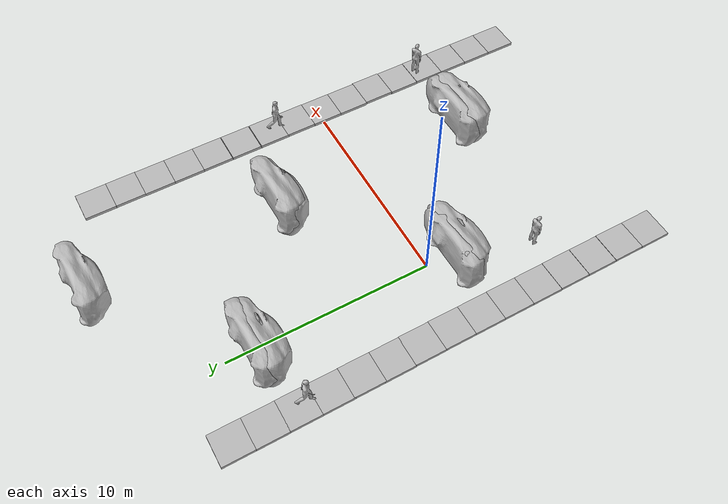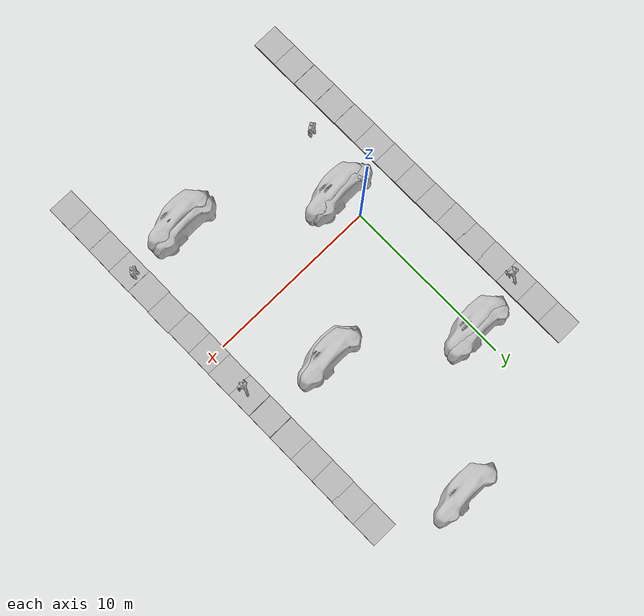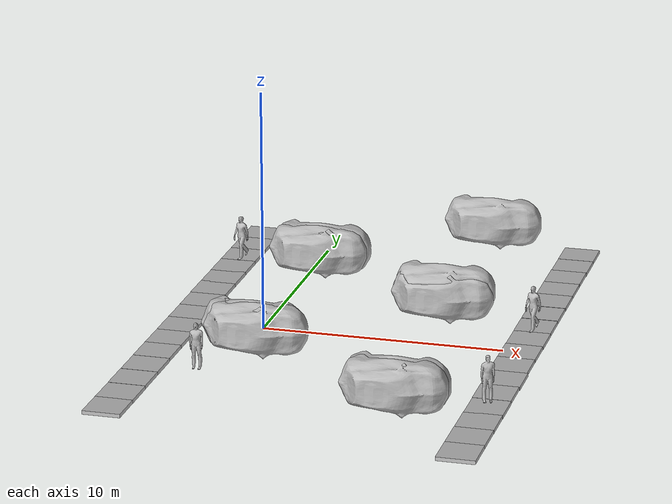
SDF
<sdf version="1.7">
 <world name="default">
  <light name="sun" type="directional">
   <pose>0 0 10 0 -0 0</pose>
   <diffuse>0.8 0.8 0.8 1</diffuse>
   <specular>0.2 0.2 0.2 1</specular>
   <attenuation>
    <range>1000</range>
    <constant>0.9</constant>
    <linear>0.01</linear>
    <quadratic>0.001</quadratic>
   </attenuation>
   <direction>-0.5 0.1 -0.9</direction>
   <spot><inner_angle>0</inner_angle><outer_angle>0</outer_angle><falloff>0</falloff></spot>
  </light>
  <gravity>0 0 -9.8</gravity>
  <magnetic_field>6e-06 2.3e-05 -4.2e-05</magnetic_field>
  <atmosphere type="adiabatic"/>
  <physics type="ode">
   <max_step_size>0.001</max_step_size>
   <real_time_factor>1</real_time_factor>
   <real_time_update_rate>1000</real_time_update_rate>
  </physics>
  <scene><ambient>0.4 0.4 0.4 1</ambient><background>0.7 0.7 0.7 1</background><shadows>1</shadows></scene>
  <audio><device>default</device></audio>
  <spherical_coordinates>
   <surface_model>EARTH_WGS84</surface_model>
   <latitude_deg>0</latitude_deg>
   <longitude_deg>0</longitude_deg>
   <elevation>0</elevation>
   <heading_deg>0</heading_deg>
  </spherical_coordinates>
  <model name="car">
   <static>1</static>
   <link name="link">
    <collision name="collision">
     <geometry><mesh><scale>2 2 2</scale><uri>model://car/meshes/car.obj</uri></mesh></geometry>
    </collision>
    <visual name="visual">
     <geometry><mesh><scale>2 2 2</scale><uri>model://car/meshes/car.obj</uri></mesh></geometry>
    </visual>
   </link>
   <pose>0.108995 -0.745607 0.66087 1.60298 -0 0</pose>
  </model>
  <model name="car_clone">
   <static>1</static>
   <link name="link">
    <collision name="collision">
     <geometry><mesh><scale>2 2 2</scale><uri>model://car/meshes/car.obj</uri></mesh></geometry>
    </collision>
    <visual name="visual">
     <geometry><mesh><scale>2 2 2</scale><uri>model://car/meshes/car.obj</uri></mesh></geometry>
    </visual>
   </link>
   <pose>7.1852 -5.65099 0.647097 1.60298 -0 0</pose>
  </model>
  <model name="car_clone_0">
   <static>1</static>
   <link name="link">
    <collision name="collision">
     <geometry><mesh><scale>2 2 2</scale><uri>model://car/meshes/car.obj</uri></mesh></geometry>
    </collision>
    <visual name="visual">
     <geometry><mesh><scale>2 2 2</scale><uri>model://car/meshes/car.obj</uri></mesh></geometry>
    </visual>
   </link>
   <pose>6.63545 5.07193 0.797903 1.58582 -0 0</pose>
  </model>
  <model name="car_clone_0_clone">
   <static>1</static>
   <link name="link">
    <collision name="collision">
     <geometry><mesh><scale>2 2 2</scale><uri>model://car/meshes/car.obj</uri></mesh></geometry>
    </collision>
    <visual name="visual">
     <geometry><mesh><scale>2 2 2</scale><uri>model://car/meshes/car.obj</uri></mesh></geometry>
    </visual>
   </link>
   <pose>0.201395 9.34131 0.65244 1.60298 -0 0</pose>
  </model>
  <model name="walkway_metal_straight">
   <static>1</static>
   <link name="link">
    <collision name="collision">
     <pose>0 0.762 0.076075 0 -0 0</pose>
     <geometry><box><size>1.524 1.524 0.15215</size></box></geometry>
    </collision>
    <visual name="visual">
     <geometry>
      <mesh><scale>0.001 0.001 0.001</scale><uri>model://walkway_metal_straight/meshes/mesh.obj</uri></mesh>
     </geometry>
    </visual>
   </link>
   <pose>10.7625 5.09804 0 0 -0 0</pose>
  </model>
  <model name="walkway_metal_straight_clone">
   <static>1</static>
   <link name="link">
    <collision name="collision">
     <pose>0 0.762 0.076075 0 -0 0</pose>
     <geometry><box><size>1.524 1.524 0.15215</size></box></geometry>
    </collision>
    <visual name="visual">
     <geometry>
      <mesh><scale>0.001 0.001 0.001</scale><uri>model://walkway_metal_straight/meshes/mesh.obj</uri></mesh>
     </geometry>
    </visual>
   </link>
   <pose>10.7568 3.54542 0 0 -0 0</pose>
  </model>
  <model name="walkway_metal_straight_clone_0">
   <static>1</static>
   <link name="link">
    <collision name="collision">
     <pose>0 0.762 0.076075 0 -0 0</pose>
     <geometry><box><size>1.524 1.524 0.15215</size></box></geometry>
    </collision>
    <visual name="visual">
     <geometry>
      <mesh><scale>0.001 0.001 0.001</scale><uri>model://walkway_metal_straight/meshes/mesh.obj</uri></mesh>
     </geometry>
    </visual>
   </link>
   <pose>10.757 1.98988 0 0 -0 0</pose>
  </model>
  <model name="walkway_metal_straight_clone_1">
   <static>1</static>
   <link name="link">
    <collision name="collision">
     <pose>0 0.762 0.076075 0 -0 0</pose>
     <geometry><box><size>1.524 1.524 0.15215</size></box></geometry>
    </collision>
    <visual name="visual">
     <geometry>
      <mesh><scale>0.001 0.001 0.001</scale><uri>model://walkway_metal_straight/meshes/mesh.obj</uri></mesh>
     </geometry>
    </visual>
   </link>
   <pose>10.7643 0.507661 0 0 -0 0</pose>
  </model>
  <model name="walkway_metal_straight_clone_1_clone">
   <static>1</static>
   <link name="link">
    <collision name="collision">
     <pose>0 0.762 0.076075 0 -0 0</pose>
     <geometry><box><size>1.524 1.524 0.15215</size></box></geometry>
    </collision>
    <visual name="visual">
     <geometry>
      <mesh><scale>0.001 0.001 0.001</scale><uri>model://walkway_metal_straight/meshes/mesh.obj</uri></mesh>
     </geometry>
    </visual>
   </link>
   <pose>10.7497 -1.00004 0 0 -0 0</pose>
  </model>
  <model name="walkway_metal_straight_clone_1_clone_0">
   <static>1</static>
   <link name="link">
    <collision name="collision">
     <pose>0 0.762 0.076075 0 -0 0</pose>
     <geometry><box><size>1.524 1.524 0.15215</size></box></geometry>
    </collision>
    <visual name="visual">
     <geometry>
      <mesh><scale>0.001 0.001 0.001</scale><uri>model://walkway_metal_straight/meshes/mesh.obj</uri></mesh>
     </geometry>
    </visual>
   </link>
   <pose>10.7435 -2.51706 0 0 -0 0</pose>
  </model>
  <model name="walkway_metal_straight_clone_1_clone_1">
   <static>1</static>
   <link name="link">
    <collision name="collision">
     <pose>0 0.762 0.076075 0 -0 0</pose>
     <geometry><box><size>1.524 1.524 0.15215</size></box></geometry>
    </collision>
    <visual name="visual">
     <geometry>
      <mesh><scale>0.001 0.001 0.001</scale><uri>model://walkway_metal_straight/meshes/mesh.obj</uri></mesh>
     </geometry>
    </visual>
   </link>
   <pose>10.7838 -4.03653 0 0 -0 0</pose>
  </model>
  <model name="walkway_metal_straight_clone_1_clone_2">
   <static>1</static>
   <link name="link">
    <collision name="collision">
     <pose>0 0.762 0.076075 0 -0 0</pose>
     <geometry><box><size>1.524 1.524 0.15215</size></box></geometry>
    </collision>
    <visual name="visual">
     <geometry>
      <mesh><scale>0.001 0.001 0.001</scale><uri>model://walkway_metal_straight/meshes/mesh.obj</uri></mesh>
     </geometry>
    </visual>
   </link>
   <pose>10.7551 -5.55481 0 0 -0 0</pose>
  </model>
  <model name="walkway_metal_straight_clone_1_clone_3">
   <static>1</static>
   <link name="link">
    <collision name="collision">
     <pose>0 0.762 0.076075 0 -0 0</pose>
     <geometry><box><size>1.524 1.524 0.15215</size></box></geometry>
    </collision>
    <visual name="visual">
     <geometry>
      <mesh><scale>0.001 0.001 0.001</scale><uri>model://walkway_metal_straight/meshes/mesh.obj</uri></mesh>
     </geometry>
    </visual>
   </link>
   <pose>10.769 -7.08597 0 0 -0 0</pose>
  </model>
  <model name="walkway_metal_straight_clone_1_clone_4">
   <static>1</static>
   <link name="link">
    <collision name="collision">
     <pose>0 0.762 0.076075 0 -0 0</pose>
     <geometry><box><size>1.524 1.524 0.15215</size></box></geometry>
    </collision>
    <visual name="visual">
     <geometry>
      <mesh><scale>0.001 0.001 0.001</scale><uri>model://walkway_metal_straight/meshes/mesh.obj</uri></mesh>
     </geometry>
    </visual>
   </link>
   <pose>10.7569 -8.56796 0 0 -0 0</pose>
  </model>
  <model name="walkway_metal_straight_clone_1_clone_5">
   <static>1</static>
   <link name="link">
    <collision name="collision">
     <pose>0 0.762 0.076075 0 -0 0</pose>
     <geometry><box><size>1.524 1.524 0.15215</size></box></geometry>
    </collision>
    <visual name="visual">
     <geometry>
      <mesh><scale>0.001 0.001 0.001</scale><uri>model://walkway_metal_straight/meshes/mesh.obj</uri></mesh>
     </geometry>
    </visual>
   </link>
   <pose>10.7494 -10.0935 0 0 -0 0</pose>
  </model>
  <model name="walkway_metal_straight_clone_1_clone_6">
   <static>1</static>
   <link name="link">
    <collision name="collision">
     <pose>0 0.762 0.076075 0 -0 0</pose>
     <geometry><box><size>1.524 1.524 0.15215</size></box></geometry>
    </collision>
    <visual name="visual">
     <geometry>
      <mesh><scale>0.001 0.001 0.001</scale><uri>model://walkway_metal_straight/meshes/mesh.obj</uri></mesh>
     </geometry>
    </visual>
   </link>
   <pose>10.7466 -11.6175 0 0 -0 0</pose>
  </model>
  <light name="user_spot_light_2" type="spot">
   <pose>0.146558 -7.64628 1 0 -0 0</pose>
   <diffuse>0.5 0.5 0.5 1</diffuse>
   <specular>0.1 0.1 0.1 1</specular>
   <direction>0 0 -1</direction>
   <attenuation>
    <range>20</range>
    <constant>0.5</constant>
    <linear>0.01</linear>
    <quadratic>0.001</quadratic>
   </attenuation>
   <cast_shadows>0</cast_shadows>
   <spot><inner_angle>0.6</inner_angle><outer_angle>1</outer_angle><falloff>1</falloff></spot>
  </light>
  <model name="walkway_metal_straight_clone_2">
   <static>1</static>
   <link name="link">
    <collision name="collision">
     <pose>0 0.762 0.076075 0 -0 0</pose>
     <geometry><box><size>1.524 1.524 0.15215</size></box></geometry>
    </collision>
    <visual name="visual">
     <geometry>
      <mesh><scale>0.001 0.001 0.001</scale><uri>model://walkway_metal_straight/meshes/mesh.obj</uri></mesh>
     </geometry>
    </visual>
   </link>
   <pose>10.7601 6.61868 0 0 -0 0</pose>
  </model>
  <model name="walkway_metal_straight_clone_3">
   <static>1</static>
   <link name="link">
    <collision name="collision">
     <pose>0 0.762 0.076075 0 -0 0</pose>
     <geometry><box><size>1.524 1.524 0.15215</size></box></geometry>
    </collision>
    <visual name="visual">
     <geometry>
      <mesh><scale>0.001 0.001 0.001</scale><uri>model://walkway_metal_straight/meshes/mesh.obj</uri></mesh>
     </geometry>
    </visual>
   </link>
   <pose>10.7611 8.13541 0 0 -0 0</pose>
  </model>
  <model name="walkway_metal_straight_clone_3_clone">
   <static>1</static>
   <link name="link">
    <collision name="collision">
     <pose>0 0.762 0.076075 0 -0 0</pose>
     <geometry><box><size>1.524 1.524 0.15215</size></box></geometry>
    </collision>
    <visual name="visual">
     <geometry>
      <mesh><scale>0.001 0.001 0.001</scale><uri>model://walkway_metal_straight/meshes/mesh.obj</uri></mesh>
     </geometry>
    </visual>
   </link>
   <pose>10.7771 9.61259 0 0 -0 0</pose>
  </model>
  <model name="walkway_metal_straight_clone_3_clone_0">
   <static>1</static>
   <link name="link">
    <collision name="collision">
     <pose>0 0.762 0.076075 0 -0 0</pose>
     <geometry><box><size>1.524 1.524 0.15215</size></box></geometry>
    </collision>
    <visual name="visual">
     <geometry>
      <mesh><scale>0.001 0.001 0.001</scale><uri>model://walkway_metal_straight/meshes/mesh.obj</uri></mesh>
     </geometry>
    </visual>
   </link>
   <pose>10.7719 11.1421 0 0 -0 0</pose>
  </model>
  <model name="walkway_metal_straight_clone_3_clone_0_clone">
   <static>1</static>
   <link name="link">
    <collision name="collision">
     <pose>0 0.762 0.076075 0 -0 0</pose>
     <geometry><box><size>1.524 1.524 0.15215</size></box></geometry>
    </collision>
    <visual name="visual">
     <geometry>
      <mesh><scale>0.001 0.001 0.001</scale><uri>model://walkway_metal_straight/meshes/mesh.obj</uri></mesh>
     </geometry>
    </visual>
   </link>
   <pose>-3.34955 10.4785 0 0 -0 0</pose>
  </model>
  <model name="walkway_metal_straight_clone_3_clone_0_clone_clone">
   <static>1</static>
   <link name="link">
    <collision name="collision">
     <pose>0 0.762 0.076075 0 -0 0</pose>
     <geometry><box><size>1.524 1.524 0.15215</size></box></geometry>
    </collision>
    <visual name="visual">
     <geometry>
      <mesh><scale>0.001 0.001 0.001</scale><uri>model://walkway_metal_straight/meshes/mesh.obj</uri></mesh>
     </geometry>
    </visual>
   </link>
   <pose>-3.35481 8.95698 0 0 -0 0</pose>
  </model>
  <model name="walkway_metal_straight_clone_3_clone_0_clone_clone_0">
   <static>1</static>
   <link name="link">
    <collision name="collision">
     <pose>0 0.762 0.076075 0 -0 0</pose>
     <geometry><box><size>1.524 1.524 0.15215</size></box></geometry>
    </collision>
    <visual name="visual">
     <geometry>
      <mesh><scale>0.001 0.001 0.001</scale><uri>model://walkway_metal_straight/meshes/mesh.obj</uri></mesh>
     </geometry>
    </visual>
   </link>
   <pose>-3.34729 7.45777 0 0 -0 0</pose>
  </model>
  <model name="walkway_metal_straight_clone_3_clone_0_clone_clone_1">
   <static>1</static>
   <link name="link">
    <collision name="collision">
     <pose>0 0.762 0.076075 0 -0 0</pose>
     <geometry><box><size>1.524 1.524 0.15215</size></box></geometry>
    </collision>
    <visual name="visual">
     <geometry>
      <mesh><scale>0.001 0.001 0.001</scale><uri>model://walkway_metal_straight/meshes/mesh.obj</uri></mesh>
     </geometry>
    </visual>
   </link>
   <pose>-3.34426 5.95164 0 0 -0 0</pose>
  </model>
  <model name="walkway_metal_straight_clone_3_clone_0_clone_clone_2">
   <static>1</static>
   <link name="link">
    <collision name="collision">
     <pose>0 0.762 0.076075 0 -0 0</pose>
     <geometry><box><size>1.524 1.524 0.15215</size></box></geometry>
    </collision>
    <visual name="visual">
     <geometry>
      <mesh><scale>0.001 0.001 0.001</scale><uri>model://walkway_metal_straight/meshes/mesh.obj</uri></mesh>
     </geometry>
    </visual>
   </link>
   <pose>-3.33639 4.49253 0 0 -0 0</pose>
  </model>
  <model name="walkway_metal_straight_clone_3_clone_0_clone_clone_3">
   <static>1</static>
   <link name="link">
    <collision name="collision">
     <pose>0 0.762 0.076075 0 -0 0</pose>
     <geometry><box><size>1.524 1.524 0.15215</size></box></geometry>
    </collision>
    <visual name="visual">
     <geometry>
      <mesh><scale>0.001 0.001 0.001</scale><uri>model://walkway_metal_straight/meshes/mesh.obj</uri></mesh>
     </geometry>
    </visual>
   </link>
   <pose>-3.33677 3.03003 0 0 -0 0</pose>
  </model>
  <model name="walkway_metal_straight_clone_3_clone_0_clone_clone_4">
   <static>1</static>
   <link name="link">
    <collision name="collision">
     <pose>0 0.762 0.076075 0 -0 0</pose>
     <geometry><box><size>1.524 1.524 0.15215</size></box></geometry>
    </collision>
    <visual name="visual">
     <geometry>
      <mesh><scale>0.001 0.001 0.001</scale><uri>model://walkway_metal_straight/meshes/mesh.obj</uri></mesh>
     </geometry>
    </visual>
   </link>
   <pose>-3.31864 1.52703 0 0 -0 0</pose>
  </model>
  <model name="walkway_metal_straight_clone_3_clone_0_clone_clone_5">
   <static>1</static>
   <link name="link">
    <collision name="collision">
     <pose>0 0.762 0.076075 0 -0 0</pose>
     <geometry><box><size>1.524 1.524 0.15215</size></box></geometry>
    </collision>
    <visual name="visual">
     <geometry>
      <mesh><scale>0.001 0.001 0.001</scale><uri>model://walkway_metal_straight/meshes/mesh.obj</uri></mesh>
     </geometry>
    </visual>
   </link>
   <pose>-3.30742 0.010922 0 0 -0 0</pose>
  </model>
  <model name="walkway_metal_straight_clone_3_clone_0_clone_clone_6">
   <static>1</static>
   <link name="link">
    <collision name="collision">
     <pose>0 0.762 0.076075 0 -0 0</pose>
     <geometry><box><size>1.524 1.524 0.15215</size></box></geometry>
    </collision>
    <visual name="visual">
     <geometry>
      <mesh><scale>0.001 0.001 0.001</scale><uri>model://walkway_metal_straight/meshes/mesh.obj</uri></mesh>
     </geometry>
    </visual>
   </link>
   <pose>-3.30873 -1.51157 0 0 -0 0</pose>
  </model>
  <model name="walkway_metal_straight_clone_3_clone_0_clone_clone_7">
   <static>1</static>
   <link name="link">
    <collision name="collision">
     <pose>0 0.762 0.076075 0 -0 0</pose>
     <geometry><box><size>1.524 1.524 0.15215</size></box></geometry>
    </collision>
    <visual name="visual">
     <geometry>
      <mesh><scale>0.001 0.001 0.001</scale><uri>model://walkway_metal_straight/meshes/mesh.obj</uri></mesh>
     </geometry>
    </visual>
   </link>
   <pose>-3.30414 -3.03559 0 0 -0 0</pose>
  </model>
  <model name="walkway_metal_straight_clone_3_clone_0_clone_clone_8">
   <static>1</static>
   <link name="link">
    <collision name="collision">
     <pose>0 0.762 0.076075 0 -0 0</pose>
     <geometry><box><size>1.524 1.524 0.15215</size></box></geometry>
    </collision>
    <visual name="visual">
     <geometry>
      <mesh><scale>0.001 0.001 0.001</scale><uri>model://walkway_metal_straight/meshes/mesh.obj</uri></mesh>
     </geometry>
    </visual>
   </link>
   <pose>-3.30448 -4.55523 0 0 -0 0</pose>
  </model>
  <model name="walkway_metal_straight_clone_3_clone_0_clone_clone_9">
   <static>1</static>
   <link name="link">
    <collision name="collision">
     <pose>0 0.762 0.076075 0 -0 0</pose>
     <geometry><box><size>1.524 1.524 0.15215</size></box></geometry>
    </collision>
    <visual name="visual">
     <geometry>
      <mesh><scale>0.001 0.001 0.001</scale><uri>model://walkway_metal_straight/meshes/mesh.obj</uri></mesh>
     </geometry>
    </visual>
   </link>
   <pose>-3.29251 -6.08455 0 0 -0 0</pose>
  </model>
  <model name="walkway_metal_straight_clone_3_clone_0_clone_clone_10">
   <static>1</static>
   <link name="link">
    <collision name="collision">
     <pose>0 0.762 0.076075 0 -0 0</pose>
     <geometry><box><size>1.524 1.524 0.15215</size></box></geometry>
    </collision>
    <visual name="visual">
     <geometry>
      <mesh><scale>0.001 0.001 0.001</scale><uri>model://walkway_metal_straight/meshes/mesh.obj</uri></mesh>
     </geometry>
    </visual>
   </link>
   <pose>-3.29313 -7.61698 0 0 -0 0</pose>
  </model>
  <model name="walkway_metal_straight_clone_3_clone_0_clone_clone_11">
   <static>1</static>
   <link name="link">
    <collision name="collision">
     <pose>0 0.762 0.076075 0 -0 0</pose>
     <geometry><box><size>1.524 1.524 0.15215</size></box></geometry>
    </collision>
    <visual name="visual">
     <geometry>
      <mesh><scale>0.001 0.001 0.001</scale><uri>model://walkway_metal_straight/meshes/mesh.obj</uri></mesh>
     </geometry>
    </visual>
   </link>
   <pose>-3.28217 -9.15153 0 0 -0 0</pose>
  </model>
  <model name="walkway_metal_straight_clone_3_clone_0_clone_clone_12">
   <static>1</static>
   <link name="link">
    <collision name="collision">
     <pose>0 0.762 0.076075 0 -0 0</pose>
     <geometry><box><size>1.524 1.524 0.15215</size></box></geometry>
    </collision>
    <visual name="visual">
     <geometry>
      <mesh><scale>0.001 0.001 0.001</scale><uri>model://walkway_metal_straight/meshes/mesh.obj</uri></mesh>
     </geometry>
    </visual>
   </link>
   <pose>-3.28562 -10.6639 0 0 -0 0</pose>
  </model>
  <light name="user_spot_light_0" type="spot">
   <pose>0.017133 -3.66954 1 0 -0 0</pose>
   <diffuse>0.5 0.5 0.5 1</diffuse>
   <specular>0.1 0.1 0.1 1</specular>
   <direction>0 0 -1</direction>
   <attenuation>
    <range>20</range>
    <constant>0.5</constant>
    <linear>0.01</linear>
    <quadratic>0.001</quadratic>
   </attenuation>
   <cast_shadows>0</cast_shadows>
   <spot><inner_angle>0.6</inner_angle><outer_angle>1</outer_angle><falloff>1</falloff></spot>
  </light>
  <light name="user_spot_light_1" type="spot">
   <pose>6.91556 2.03476 1 0 -0 0</pose>
   <diffuse>0.5 0.5 0.5 1</diffuse>
   <specular>0.1 0.1 0.1 1</specular>
   <direction>0 0 -1</direction>
   <attenuation>
    <range>20</range>
    <constant>0.5</constant>
    <linear>0.01</linear>
    <quadratic>0.001</quadratic>
   </attenuation>
   <cast_shadows>0</cast_shadows>
   <spot><inner_angle>0.6</inner_angle><outer_angle>1</outer_angle><falloff>1</falloff></spot>
  </light>
  <light name="user_spot_light_0_clone" type="spot">
   <pose>0.122327 7.91081 0.754651 0 -0 0</pose>
   <diffuse>0.498039 0.498039 0.498039 1</diffuse>
   <specular>0.0980392 0.0980392 0.0980392 1</specular>
   <direction>0 0 -1</direction>
   <attenuation>
    <range>20</range>
    <constant>0.5</constant>
    <linear>0.01</linear>
    <quadratic>0.001</quadratic>
   </attenuation>
   <cast_shadows>0</cast_shadows>
   <spot><inner_angle>0.6</inner_angle><outer_angle>1</outer_angle><falloff>1</falloff></spot>
  </light>
  <model name="person_walking">
   <link name="link">
    <inertial>
     <pose>0 0 0.95 0 -0 0</pose>
     <mass>80</mass>
     <inertia><ixx>27.82</ixx><ixy>0</ixy><ixz>0</ixz><iyy>24.88</iyy><iyz>0</iyz><izz>4.57</izz></inertia>
    </inertial>
    <collision name="bottom">
     <pose>0 0 0.01 0 -0 0</pose>
     <geometry><box><size>0.35 0.75 0.02</size></box></geometry>
    </collision>
    <collision name="person">
     <pose>0 0 -0.02 0 -0 0</pose>
     <geometry><mesh><uri>model://person_walking/meshes/walking.dae</uri></mesh></geometry>
    </collision>
    <visual name="visual">
     <pose>0 0 -0.02 0 -0 0</pose>
     <geometry><mesh><uri>model://person_walking/meshes/walking.dae</uri></mesh></geometry>
    </visual>
   </link>
   <pose>10.7507 2.32507 0.15215 1e-06 0 -0.458096</pose>
  </model>
  <model name="person_standing">
   <link name="link">
    <inertial>
     <pose>0 -0.1 0.95 0 -0 0</pose>
     <mass>80</mass>
     <inertia><ixx>24.88</ixx><ixy>0</ixy><ixz>0</ixz><iyy>25.73</iyy><iyz>0</iyz><izz>2.48</izz></inertia>
    </inertial>
    <collision name="bottom">
     <pose>0 -0.1 0.01 0 -0 0</pose>
     <geometry><box><size>0.5 0.35 0.02</size></box></geometry>
    </collision>
    <collision name="person">
     <pose>0 0 0.02 0.04 -0 0</pose>
     <geometry><mesh><uri>model://person_standing/meshes/standing.dae</uri></mesh></geometry>
    </collision>
    <visual name="visual">
     <pose>0 0 0.02 0.04 -0 0</pose>
     <geometry><mesh><uri>model://person_standing/meshes/standing.dae</uri></mesh></geometry>
    </visual>
   </link>
   <pose>10.6324 -5.79135 0.15215 0 1e-06 0.382913</pose>
  </model>
  <model name="person_standing_clone">
   <link name="link">
    <inertial>
     <pose>0 -0.1 0.95 0 -0 0</pose>
     <mass>80</mass>
     <inertia><ixx>24.88</ixx><ixy>0</ixy><ixz>0</ixz><iyy>25.73</iyy><iyz>0</iyz><izz>2.48</izz></inertia>
    </inertial>
    <collision name="bottom">
     <pose>0 -0.1 0.01 0 -0 0</pose>
     <geometry><box><size>0.5 0.35 0.02</size></box></geometry>
    </collision>
    <collision name="person">
     <pose>0 0 0.02 0.04 -0 0</pose>
     <geometry><mesh><uri>model://person_standing/meshes/standing.dae</uri></mesh></geometry>
    </collision>
    <visual name="visual">
     <pose>0 0 0.02 0.04 -0 0</pose>
     <geometry><mesh><uri>model://person_standing/meshes/standing.dae</uri></mesh></geometry>
    </visual>
   </link>
   <pose>-1.28082 -4.89021 -0 1e-06 1e-06 -0.000334</pose>
  </model>
  <model name="person_walking_clone">
   <link name="link">
    <inertial>
     <pose>0 0 0.95 0 -0 0</pose>
     <mass>80</mass>
     <inertia><ixx>27.82</ixx><ixy>0</ixy><ixz>0</ixz><iyy>24.88</iyy><iyz>0</iyz><izz>4.57</izz></inertia>
    </inertial>
    <collision name="bottom">
     <pose>0 0 0.01 0 -0 0</pose>
     <geometry><box><size>0.35 0.75 0.02</size></box></geometry>
    </collision>
    <collision name="person">
     <pose>0 0 -0.02 0 -0 0</pose>
     <geometry><mesh><uri>model://person_walking/meshes/walking.dae</uri></mesh></geometry>
    </collision>
    <visual name="visual">
     <pose>0 0 -0.02 0 -0 0</pose>
     <geometry><mesh><uri>model://person_walking/meshes/walking.dae</uri></mesh></geometry>
    </visual>
   </link>
   <pose>-3.26228 7.81587 0.152149 2e-06 -1e-06 -0.45924</pose>
  </model>
  <model name="car_0">
   <static>1</static>
   <link name="link">
    <collision name="collision">
     <geometry><mesh><scale>2 2 2</scale><uri>model://car/meshes/car.obj</uri></mesh></geometry>
    </collision>
    <visual name="visual">
     <geometry><mesh><scale>2 2 2</scale><uri>model://car/meshes/car.obj</uri></mesh></geometry>
    </visual>
   </link>
   <pose>7.18741 -5.24308 0.61737 1.59532 -0 0</pose>
  </model>
  <model name="car_0_clone">
   <static>1</static>
   <link name="link">
    <collision name="collision">
     <geometry><mesh><scale>2 2 2</scale><uri>model://car/meshes/car.obj</uri></mesh></geometry>
    </collision>
    <visual name="visual">
     <geometry><mesh><scale>2 2 2</scale><uri>model://car/meshes/car.obj</uri></mesh></geometry>
    </visual>
   </link>
   <pose>0.280275 -0.989111 0.650372 1.59532 -0 0</pose>
  </model>
  <model name="car_0_clone_0">
   <static>1</static>
   <link name="link">
    <collision name="collision">
     <geometry><mesh><scale>2 2 2</scale><uri>model://car/meshes/car.obj</uri></mesh></geometry>
    </collision>
    <visual name="visual">
     <geometry><mesh><scale>2 2 2</scale><uri>model://car/meshes/car.obj</uri></mesh></geometry>
    </visual>
   </link>
   <pose>6.60182 4.92639 0.629027 1.59532 -0 0</pose>
  </model>
  <model name="car_0_clone_1">
   <static>1</static>
   <link name="link">
    <collision name="collision">
     <geometry><mesh><scale>2 2 2</scale><uri>model://car/meshes/car.obj</uri></mesh></geometry>
    </collision>
    <visual name="visual">
     <geometry><mesh><scale>2 2 2</scale><uri>model://car/meshes/car.obj</uri></mesh></geometry>
    </visual>
   </link>
   <pose>0.106842 9.06626 0.61737 1.59532 -0 0</pose>
  </model>
  <model name="car_0_clone_2">
   <static>1</static>
   <link name="link">
    <collision name="collision">
     <geometry><mesh><scale>2 2 2</scale><uri>model://car/meshes/car.obj</uri></mesh></geometry>
    </collision>
    <visual name="visual">
     <geometry><mesh><scale>2 2 2</scale><uri>model://car/meshes/car.obj</uri></mesh></geometry>
    </visual>
   </link>
   <pose>6.58358 14.7283 0.61737 1.59532 -0 0</pose>
  </model>
 </world>
</sdf>
